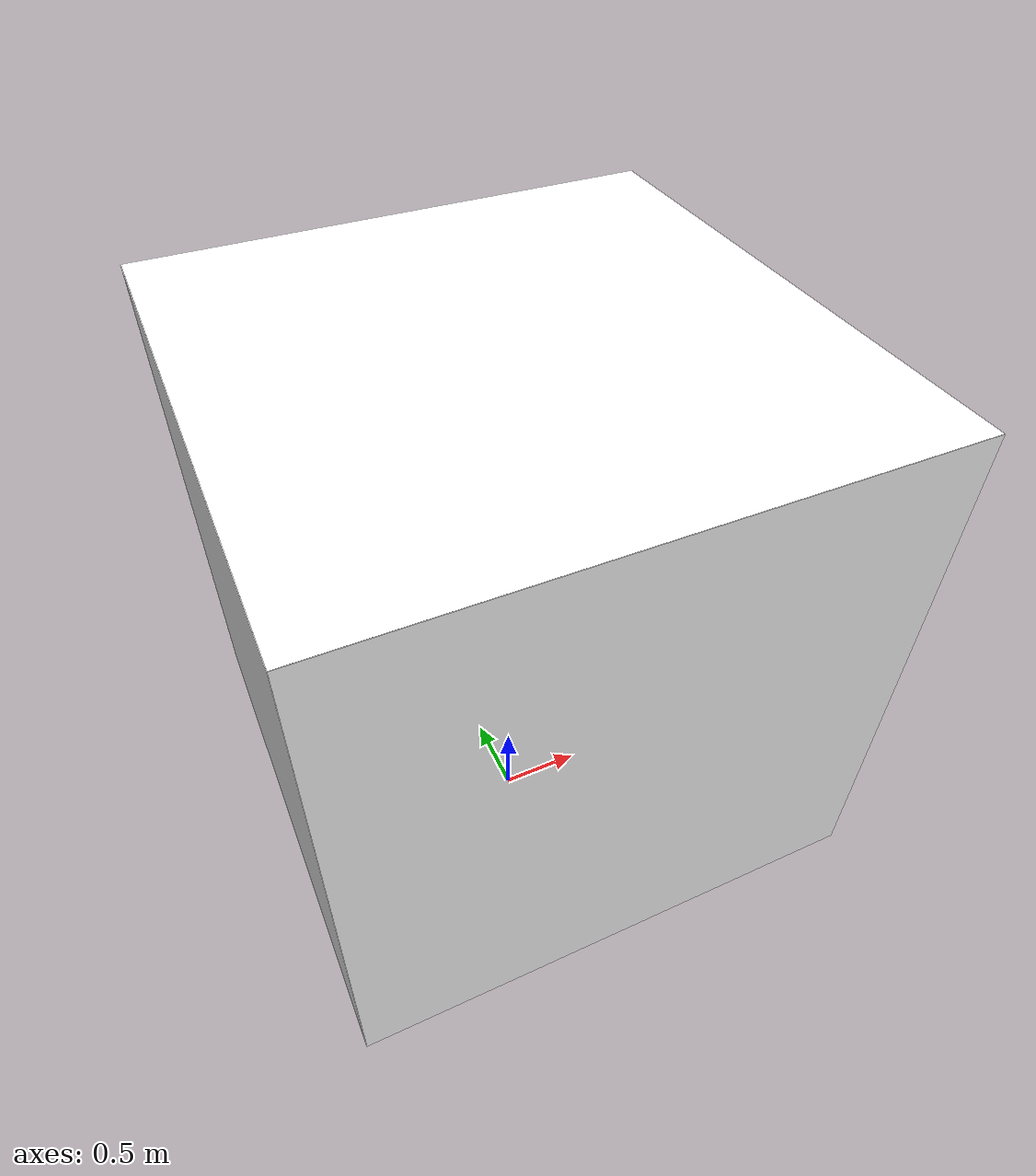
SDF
<?xml version="1.0" ?>
<sdf version="1.5">
  <model name="custom_box">
    <!-- Changed pose z value to place it higher above ground -->
    <pose>0 0 2 0 0 0</pose>
    <link name="link">
      <self_collide>true</self_collide>
      <!-- Changed to true to allow manual movement -->
      <kinematic>true</kinematic>
      <gravity>true</gravity>

      <inertial>
        <!-- Increased mass for a larger object -->
        <mass>5.0</mass>
        <pose>0 0 0 0 0 0</pose>
        <!-- Adjusted inertia values for larger size -->
        <inertia>
          <ixx>4.167</ixx>
          <ixy>0</ixy>
          <ixz>0</ixz>
          <iyy>4.167</iyy>
          <iyz>0</iyz>
          <izz>4.167</izz>
        </inertia>
      </inertial>

      <collision name="collision">
        <geometry>
          <box>
            <!-- Increased box size -->
            <size>3 3 3</size>
          </box>
        </geometry>
        <surface>
          <friction>
            <ode>
              <mu>1.0</mu>
              <mu2>1.0</mu2>
            </ode>
          </friction>
          <contact>
            <ode>
              <max_vel>0.1</max_vel>
              <min_depth>0.001</min_depth>
            </ode>
          </contact>
        </surface>
      </collision>

      <!-- Front face (with texture) - adjusted size and position -->
      <visual name="front">
        <pose>1.5 0 0 0 1.5708 0</pose>
        <geometry>
          <plane>
            <normal>0 0 1</normal>
            <size>3 3</size>
          </plane>
        </geometry>
        <material>
          <script>
            <uri>model://custom_box/materials/scripts</uri>
            <uri>model://custom_box/materials/textures</uri>
            <name>CustomBox/Image</name>
          </script>
        </material>
      </visual>
      <!-- Back face (white) - adjusted size and position -->
      <visual name="back">
        <pose>-1.5 0 0 0 1.5708 0</pose>
        <geometry>
          <plane>
            <normal>0 0 1</normal>
            <size>3 3</size>
          </plane>
        </geometry>
        <material>
          <ambient>1 1 1 1</ambient>
          <diffuse>1 1 1 1</diffuse>
        </material>
      </visual>
      <!-- Right face (white) - adjusted size and position -->
      <visual name="right">
        <pose>0 1.5 0 -1.5708 0 0</pose>
        <geometry>
          <plane>
            <normal>0 0 1</normal>
            <size>3 3</size>
          </plane>
        </geometry>
        <material>
          <ambient>1 1 1 1</ambient>
          <diffuse>1 1 1 1</diffuse>
        </material>
      </visual>
      <!-- Left face (white) - adjusted size and position -->
      <visual name="left">
        <pose>0 -1.5 0 1.5708 0 0</pose>
        <geometry>
          <plane>
            <normal>0 0 1</normal>
            <size>3 3</size>
          </plane>
        </geometry>
        <material>
          <ambient>1 1 1 1</ambient>
          <diffuse>1 1 1 1</diffuse>
        </material>
      </visual>
      <!-- Top face (white) - adjusted size and position -->
      <visual name="top">
        <pose>0 0 1.5 0 0 0</pose>
        <geometry>
          <plane>
            <normal>0 0 1</normal>
            <size>3 3</size>
          </plane>
        </geometry>
        <material>
          <ambient>1 1 1 1</ambient>
          <diffuse>1 1 1 1</diffuse>
        </material>
      </visual>
      <!-- Bottom face (white) - adjusted size and position -->
      <visual name="bottom">
        <pose>0 0 -1.5 0 0 0</pose>
        <geometry>
          <plane>
            <normal>0 0 1</normal>
            <size>3 3</size>
          </plane>
        </geometry>
        <material>
          <ambient>1 1 1 1</ambient>
          <diffuse>1 1 1 1</diffuse>
        </material>
      </visual>
    </link>
  </model>
</sdf>
